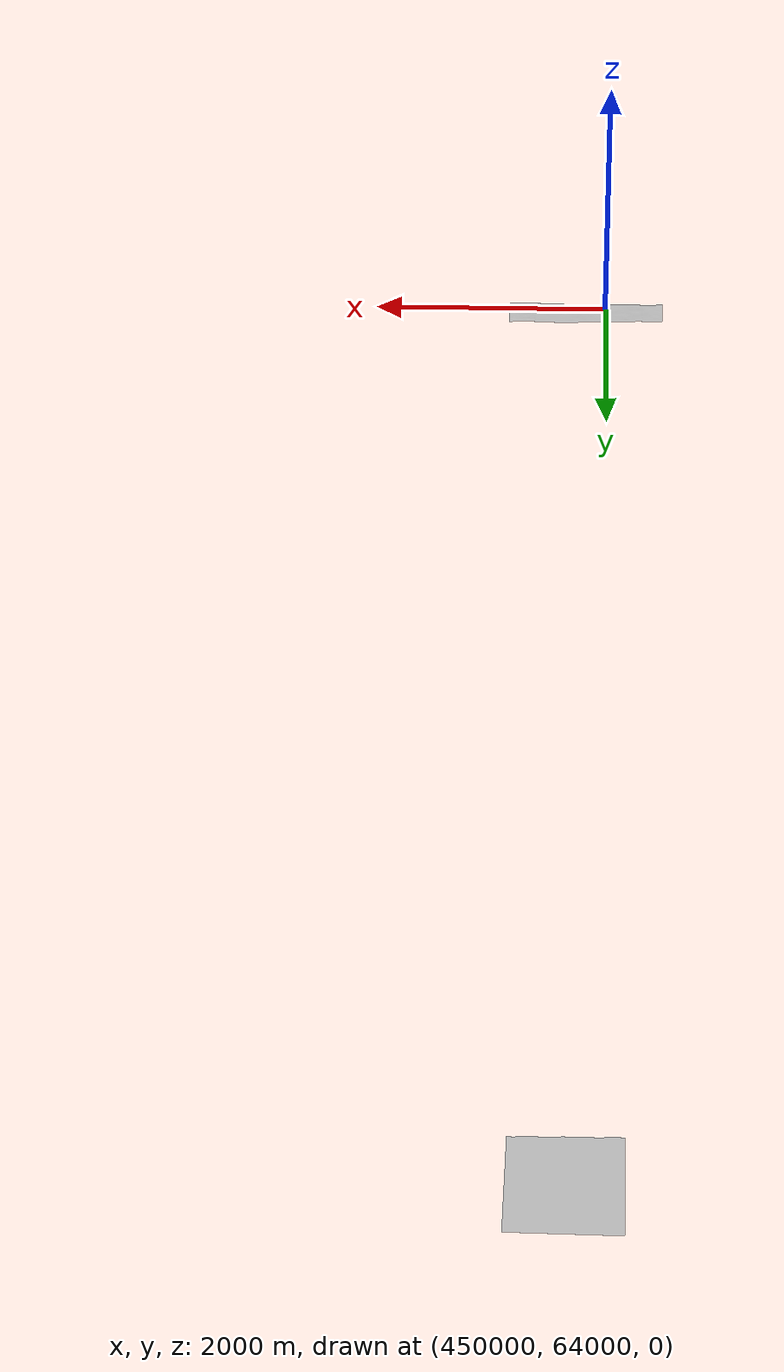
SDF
<?xml version="1.0" ?>
<sdf version="1.5">
  <model name="buzzbay.R_-71.105_-71.090_41.575_41.590">
    <static>true</static>
    <pose>0 0 0 0 0 0</pose>
    <self_collide>false</self_collide>
    <link name="terrain_link">
      <visual name="terrain_visual">
	<geometry>
	  <mesh>
	    <uri>model://buzzbay.R_-71.105_-71.090_41.575_41.590.epsg26987/meshes/buzzbay.R_-71.105_-71.090_41.575_41.590.epsg26987.obj</uri>
	    <scale>1 1 1</scale>
	  </mesh>
	</geometry>

	<material>
	  <script>
	    <uri>file://Media/materials/scripts/sand.material</uri>
	    <name>UUVSimulator/SandAndStones</name>
	  </script>
	</material>
      </visual>
      <collision name="collision">
	<geometry>
	  <mesh>
   	    <uri>model://buzzbay.R_-71.105_-71.090_41.575_41.590.epsg26987/meshes/buzzbay.R_-71.105_-71.090_41.575_41.590.epsg26987.obj</uri>
   	    <scale>1 1 1</scale>
	  </mesh>
	</geometry>
	<surface>
	  <contact>
            <collide_bitmask>0xffff</collide_bitmask>
	  </contact>
	</surface>
      </collision>
    </link>
  </model>
</sdf>
